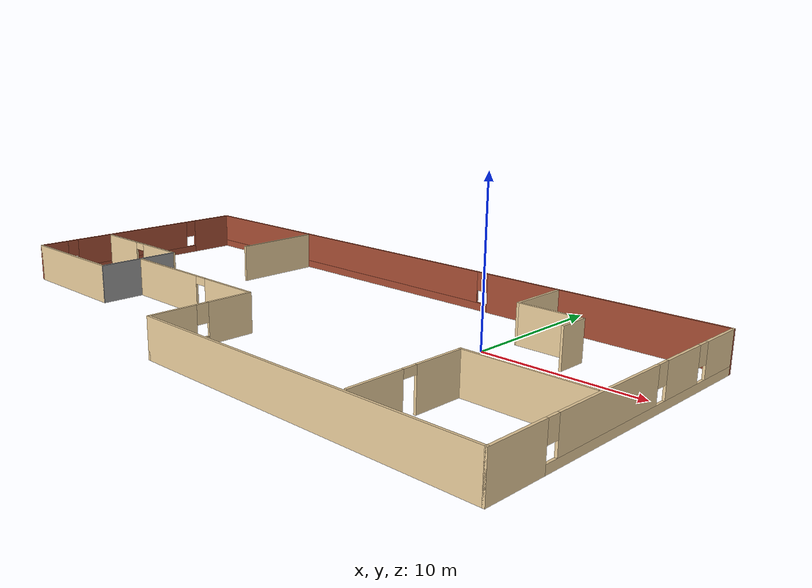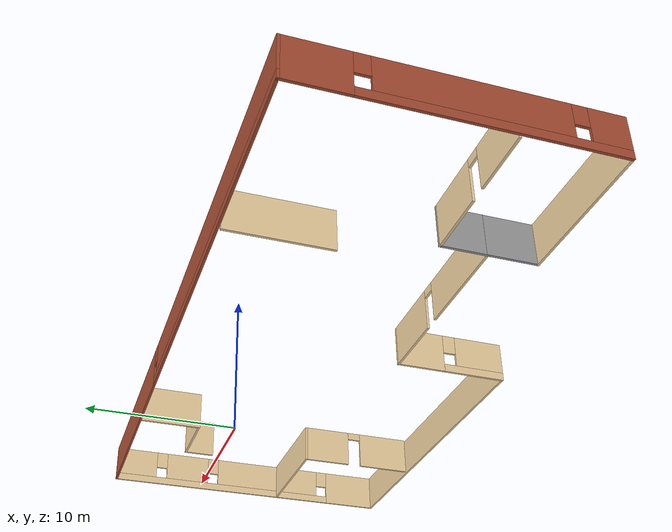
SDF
<?xml version='1.0'?>
<sdf version='1.6'>
  <model name='building'>
    <pose frame=''>-10.1439 -3.88836 0 0 -0 0</pose>
    <link name='Wall_0'>
      <pose frame=''>-21.15 2 0 0 0 -1.5708</pose>
      <visual name='Wall_0_Visual_0'>
        <pose frame=''>-6.58308 0 1.25 0 -0 0</pose>
        <geometry>
          <box>
            <size>3.33383 0.15 2.5</size>
          </box>
        </geometry>
        <material>
          <script>
            <uri>file://media/materials/scripts/gazebo.material</uri>
            <name>Gazebo/Bricks</name>
          </script>
          <ambient>1 1 1 1</ambient>
        </material>
        <meta>
          <layer>0</layer>
        </meta>
      </visual>
      <collision name='Wall_0_Collision_0'>
        <geometry>
          <box>
            <size>3.33383 0.15 2.5</size>
          </box>
        </geometry>
        <pose frame=''>-6.58308 0 1.25 0 -0 0</pose>
      </collision>
      <visual name='Wall_0_Visual_1'>
        <pose frame=''>1.66691 0 0.25 0 -0 0</pose>
        <geometry>
          <box>
            <size>13.1662 0.15 0.5</size>
          </box>
        </geometry>
        <material>
          <script>
            <uri>file://media/materials/scripts/gazebo.material</uri>
            <name>Gazebo/Bricks</name>
          </script>
          <ambient>1 1 1 1</ambient>
        </material>
        <meta>
          <layer>0</layer>
        </meta>
      </visual>
      <collision name='Wall_0_Collision_1'>
        <geometry>
          <box>
            <size>13.1662 0.15 0.5</size>
          </box>
        </geometry>
        <pose frame=''>1.66691 0 0.25 0 -0 0</pose>
      </collision>
      <visual name='Wall_0_Visual_2'>
        <pose frame=''>0.649236 0 1.5 0 -0 0</pose>
        <geometry>
          <box>
            <size>9.53081 0.15 2</size>
          </box>
        </geometry>
        <material>
          <script>
            <uri>file://media/materials/scripts/gazebo.material</uri>
            <name>Gazebo/Bricks</name>
          </script>
          <ambient>1 1 1 1</ambient>
        </material>
        <meta>
          <layer>0</layer>
        </meta>
      </visual>
      <collision name='Wall_0_Collision_2'>
        <geometry>
          <box>
            <size>9.53081 0.15 2</size>
          </box>
        </geometry>
        <pose frame=''>0.649236 0 1.5 0 -0 0</pose>
      </collision>
      <visual name='Wall_0_Visual_3'>
        <pose frame=''>7.23232 0 1.5 0 -0 0</pose>
        <geometry>
          <box>
            <size>2.03536 0.15 2</size>
          </box>
        </geometry>
        <material>
          <script>
            <uri>file://media/materials/scripts/gazebo.material</uri>
            <name>Gazebo/Bricks</name>
          </script>
          <ambient>1 1 1 1</ambient>
        </material>
        <meta>
          <layer>0</layer>
        </meta>
      </visual>
      <collision name='Wall_0_Collision_3'>
        <geometry>
          <box>
            <size>2.03536 0.15 2</size>
          </box>
        </geometry>
        <pose frame=''>7.23232 0 1.5 0 -0 0</pose>
      </collision>
      <visual name='Wall_0_Visual_4'>
        <pose frame=''>-4.51617 0 1.9 0 -0 0</pose>
        <geometry>
          <box>
            <size>0.8 0.15 1.2</size>
          </box>
        </geometry>
        <material>
          <script>
            <uri>file://media/materials/scripts/gazebo.material</uri>
            <name>Gazebo/Bricks</name>
          </script>
          <ambient>1 1 1 1</ambient>
        </material>
        <meta>
          <layer>0</layer>
        </meta>
      </visual>
      <collision name='Wall_0_Collision_4'>
        <geometry>
          <box>
            <size>0.8 0.15 1.2</size>
          </box>
        </geometry>
        <pose frame=''>-4.51617 0 1.9 0 -0 0</pose>
      </collision>
      <visual name='Wall_0_Visual_5'>
        <pose frame=''>5.81464 0 1.9 0 -0 0</pose>
        <geometry>
          <box>
            <size>0.8 0.15 1.2</size>
          </box>
        </geometry>
        <material>
          <script>
            <uri>file://media/materials/scripts/gazebo.material</uri>
            <name>Gazebo/Bricks</name>
          </script>
          <ambient>1 1 1 1</ambient>
        </material>
        <meta>
          <layer>0</layer>
        </meta>
      </visual>
      <collision name='Wall_0_Collision_5'>
        <geometry>
          <box>
            <size>0.8 0.15 1.2</size>
          </box>
        </geometry>
        <pose frame=''>5.81464 0 1.9 0 -0 0</pose>
      </collision>
    </link>
    <link name='Wall_1'>
      <collision name='Wall_1_Collision'>
        <geometry>
          <box>
            <size>8.5 0.15 2.5</size>
          </box>
        </geometry>
        <pose frame=''>0 0 1.25 0 -0 0</pose>
      </collision>
      <visual name='Wall_1_Visual'>
        <pose frame=''>0 0 1.25 0 -0 0</pose>
        <geometry>
          <box>
            <size>8.5 0.15 2.5</size>
          </box>
        </geometry>
        <material>
          <script>
            <uri>file://media/materials/scripts/gazebo.material</uri>
            <name>Gazebo/Grey</name>
          </script>
          <ambient>0.921569 0.807843 0.615686 1</ambient>
        </material>
        <meta>
          <layer>0</layer>
        </meta>
      </visual>
      <pose frame=''>-16.975 -6.175 0 0 -0 0</pose>
    </link>
    <link name='Wall_10'>
      <collision name='Wall_10_Collision'>
        <geometry>
          <box>
            <size>4.25 0.15 2.5</size>
          </box>
        </geometry>
        <pose frame=''>0 0 1.25 0 -0 0</pose>
      </collision>
      <visual name='Wall_10_Visual'>
        <pose frame=''>0 0 1.25 0 -0 0</pose>
        <geometry>
          <box>
            <size>4.25 0.15 2.5</size>
          </box>
        </geometry>
        <material>
          <script>
            <uri>file://media/materials/scripts/gazebo.material</uri>
            <name>Gazebo/Grey</name>
          </script>
          <ambient>0.921569 0.807843 0.615686 1</ambient>
        </material>
        <meta>
          <layer>0</layer>
        </meta>
      </visual>
      <pose frame=''>12.861 6.21739 0 0 -0 0</pose>
    </link>
    <link name='Wall_11'>
      <collision name='Wall_11_Collision'>
        <geometry>
          <box>
            <size>2 0.15 2.5</size>
          </box>
        </geometry>
        <pose frame=''>0 0 1.25 0 -0 0</pose>
      </collision>
      <visual name='Wall_11_Visual'>
        <pose frame=''>0 0 1.25 0 -0 0</pose>
        <geometry>
          <box>
            <size>2 0.15 2.5</size>
          </box>
        </geometry>
        <material>
          <script>
            <uri>file://media/materials/scripts/gazebo.material</uri>
            <name>Gazebo/Grey</name>
          </script>
          <ambient>0.921569 0.807843 0.615686 1</ambient>
        </material>
        <meta>
          <layer>0</layer>
        </meta>
      </visual>
      <pose frame=''>14.911 5.29239 0 0 0 -1.5708</pose>
    </link>
    <link name='Wall_13'>
      <collision name='Wall_13_Collision'>
        <geometry>
          <box>
            <size>7.5 0.15 2.5</size>
          </box>
        </geometry>
        <pose frame=''>0 0 1.25 0 -0 0</pose>
      </collision>
      <visual name='Wall_13_Visual'>
        <pose frame=''>0 0 1.25 0 -0 0</pose>
        <geometry>
          <box>
            <size>7.5 0.15 2.5</size>
          </box>
        </geometry>
        <material>
          <script>
            <uri>file://media/materials/scripts/gazebo.material</uri>
            <name>Gazebo/Grey</name>
          </script>
          <ambient>0.921569 0.807843 0.615686 1</ambient>
        </material>
        <meta>
          <layer>0</layer>
        </meta>
      </visual>
      <pose frame=''>17.2515 -2.30807 0 0 -0 3.14159</pose>
    </link>
    <link name='Wall_14'>
      <pose frame=''>13.5765 -6.10807 0 0 0 -1.5708</pose>
      <visual name='Wall_14_Visual_0'>
        <pose frame=''>-2.23308 0 1.25 0 -0 0</pose>
        <geometry>
          <box>
            <size>3.28383 0.15 2.5</size>
          </box>
        </geometry>
        <material>
          <script>
            <uri>file://media/materials/scripts/gazebo.material</uri>
            <name>Gazebo/Grey</name>
          </script>
          <ambient>0.921569 0.807843 0.615686 1</ambient>
        </material>
        <meta>
          <layer>0</layer>
        </meta>
      </visual>
      <collision name='Wall_14_Collision_0'>
        <geometry>
          <box>
            <size>3.28383 0.15 2.5</size>
          </box>
        </geometry>
        <pose frame=''>-2.23308 0 1.25 0 -0 0</pose>
      </collision>
      <visual name='Wall_14_Visual_1'>
        <pose frame=''>2.09192 0 1.25 0 -0 0</pose>
        <geometry>
          <box>
            <size>3.56617 0.15 2.5</size>
          </box>
        </geometry>
        <material>
          <script>
            <uri>file://media/materials/scripts/gazebo.material</uri>
            <name>Gazebo/Grey</name>
          </script>
          <ambient>0.921569 0.807843 0.615686 1</ambient>
        </material>
        <meta>
          <layer>0</layer>
        </meta>
      </visual>
      <collision name='Wall_14_Collision_1'>
        <geometry>
          <box>
            <size>3.56617 0.15 2.5</size>
          </box>
        </geometry>
        <pose frame=''>2.09192 0 1.25 0 -0 0</pose>
      </collision>
      <visual name='Wall_14_Visual_2'>
        <pose frame=''>-0.141171 0 2.25 0 -0 0</pose>
        <geometry>
          <box>
            <size>0.9 0.15 0.5</size>
          </box>
        </geometry>
        <material>
          <script>
            <uri>file://media/materials/scripts/gazebo.material</uri>
            <name>Gazebo/Grey</name>
          </script>
          <ambient>0.921569 0.807843 0.615686 1</ambient>
        </material>
        <meta>
          <layer>0</layer>
        </meta>
      </visual>
      <collision name='Wall_14_Collision_2'>
        <geometry>
          <box>
            <size>0.9 0.15 0.5</size>
          </box>
        </geometry>
        <pose frame=''>-0.141171 0 2.25 0 -0 0</pose>
      </collision>
    </link>
    <link name='Wall_18'>
      <collision name='Wall_18_Collision'>
        <geometry>
          <box>
            <size>2.75 0.15 2.5</size>
          </box>
        </geometry>
        <pose frame=''>0 0 1.25 0 -0 0</pose>
      </collision>
      <visual name='Wall_18_Visual'>
        <pose frame=''>0 0 1.25 0 -0 0</pose>
        <geometry>
          <box>
            <size>2.75 0.15 2.5</size>
          </box>
        </geometry>
        <material>
          <script>
            <uri>file://media/materials/scripts/gazebo.material</uri>
            <name>Gazebo/Grey</name>
          </script>
          <ambient>1 1 1 1</ambient>
        </material>
        <meta>
          <layer>0</layer>
        </meta>
      </visual>
      <pose frame=''>-12.8 -2.025 0 0 -0 1.5708</pose>
    </link>
    <link name='Wall_19'>
      <pose frame=''>-16.85 -0.725 0 0 -0 3.14159</pose>
      <visual name='Wall_19_Visual_0'>
        <pose frame=''>-2.23595 0 1.25 0 -0 0</pose>
        <geometry>
          <box>
            <size>3.77811 0.15 2.5</size>
          </box>
        </geometry>
        <material>
          <script>
            <uri>file://media/materials/scripts/gazebo.material</uri>
            <name>Gazebo/Grey</name>
          </script>
          <ambient>0.921569 0.807843 0.615686 1</ambient>
        </material>
        <meta>
          <layer>0</layer>
        </meta>
      </visual>
      <collision name='Wall_19_Collision_0'>
        <geometry>
          <box>
            <size>3.77811 0.15 2.5</size>
          </box>
        </geometry>
        <pose frame=''>-2.23595 0 1.25 0 -0 0</pose>
      </collision>
      <visual name='Wall_19_Visual_1'>
        <pose frame=''>2.33905 0 1.25 0 -0 0</pose>
        <geometry>
          <box>
            <size>3.57189 0.15 2.5</size>
          </box>
        </geometry>
        <material>
          <script>
            <uri>file://media/materials/scripts/gazebo.material</uri>
            <name>Gazebo/Grey</name>
          </script>
          <ambient>0.921569 0.807843 0.615686 1</ambient>
        </material>
        <meta>
          <layer>0</layer>
        </meta>
      </visual>
      <collision name='Wall_19_Collision_1'>
        <geometry>
          <box>
            <size>3.57189 0.15 2.5</size>
          </box>
        </geometry>
        <pose frame=''>2.33905 0 1.25 0 -0 0</pose>
      </collision>
      <visual name='Wall_19_Visual_2'>
        <pose frame=''>0.103107 0 2.25 0 -0 0</pose>
        <geometry>
          <box>
            <size>0.9 0.15 0.5</size>
          </box>
        </geometry>
        <material>
          <script>
            <uri>file://media/materials/scripts/gazebo.material</uri>
            <name>Gazebo/Grey</name>
          </script>
          <ambient>0.921569 0.807843 0.615686 1</ambient>
        </material>
        <meta>
          <layer>0</layer>
        </meta>
      </visual>
      <collision name='Wall_19_Collision_2'>
        <geometry>
          <box>
            <size>0.9 0.15 0.5</size>
          </box>
        </geometry>
        <pose frame=''>0.103107 0 2.25 0 -0 0</pose>
      </collision>
    </link>
    <link name='Wall_2'>
      <collision name='Wall_2_Collision'>
        <geometry>
          <box>
            <size>3 0.15 2.5</size>
          </box>
        </geometry>
        <pose frame=''>0 0 1.25 0 -0 0</pose>
      </collision>
      <visual name='Wall_2_Visual'>
        <pose frame=''>0 0 1.25 0 -0 0</pose>
        <geometry>
          <box>
            <size>3 0.15 2.5</size>
          </box>
        </geometry>
        <material>
          <script>
            <uri>file://media/materials/scripts/gazebo.material</uri>
            <name>Gazebo/Grey</name>
          </script>
          <ambient>1 1 1 1</ambient>
        </material>
        <meta>
          <layer>0</layer>
        </meta>
      </visual>
      <pose frame=''>-12.8 -4.75 0 0 -0 1.5708</pose>
    </link>
    <link name='Wall_21'>
      <collision name='Wall_21_Collision'>
        <geometry>
          <box>
            <size>6 0.15 2.5</size>
          </box>
        </geometry>
        <pose frame=''>0 0 1.25 0 -0 0</pose>
      </collision>
      <visual name='Wall_21_Visual'>
        <pose frame=''>0 0 1.25 0 -0 0</pose>
        <geometry>
          <box>
            <size>6 0.15 2.5</size>
          </box>
        </geometry>
        <material>
          <script>
            <uri>file://media/materials/scripts/gazebo.material</uri>
            <name>Gazebo/Grey</name>
          </script>
          <ambient>0.921569 0.807843 0.615686 1</ambient>
        </material>
        <meta>
          <layer>0</layer>
        </meta>
      </visual>
      <pose frame=''>-10.9268 7.03477 0 0 0 -1.5708</pose>
    </link>
    <link name='Wall_3'>
      <pose frame=''>-7 -3.325 0 0 -0 0</pose>
      <visual name='Wall_3_Visual_0'>
        <pose frame=''>-2.65081 0 1.25 0 -0 0</pose>
        <geometry>
          <box>
            <size>6.44838 0.15 2.5</size>
          </box>
        </geometry>
        <material>
          <script>
            <uri>file://media/materials/scripts/gazebo.material</uri>
            <name>Gazebo/Grey</name>
          </script>
          <ambient>0.921569 0.807843 0.615686 1</ambient>
        </material>
        <meta>
          <layer>0</layer>
        </meta>
      </visual>
      <collision name='Wall_3_Collision_0'>
        <geometry>
          <box>
            <size>6.44838 0.15 2.5</size>
          </box>
        </geometry>
        <pose frame=''>-2.65081 0 1.25 0 -0 0</pose>
      </collision>
      <visual name='Wall_3_Visual_1'>
        <pose frame=''>3.67419 0 1.25 0 -0 0</pose>
        <geometry>
          <box>
            <size>4.40162 0.15 2.5</size>
          </box>
        </geometry>
        <material>
          <script>
            <uri>file://media/materials/scripts/gazebo.material</uri>
            <name>Gazebo/Grey</name>
          </script>
          <ambient>0.921569 0.807843 0.615686 1</ambient>
        </material>
        <meta>
          <layer>0</layer>
        </meta>
      </visual>
      <collision name='Wall_3_Collision_1'>
        <geometry>
          <box>
            <size>4.40162 0.15 2.5</size>
          </box>
        </geometry>
        <pose frame=''>3.67419 0 1.25 0 -0 0</pose>
      </collision>
      <visual name='Wall_3_Visual_2'>
        <pose frame=''>1.02338 0 2.25 0 -0 0</pose>
        <geometry>
          <box>
            <size>0.9 0.15 0.5</size>
          </box>
        </geometry>
        <material>
          <script>
            <uri>file://media/materials/scripts/gazebo.material</uri>
            <name>Gazebo/Grey</name>
          </script>
          <ambient>0.921569 0.807843 0.615686 1</ambient>
        </material>
        <meta>
          <layer>0</layer>
        </meta>
      </visual>
      <collision name='Wall_3_Collision_2'>
        <geometry>
          <box>
            <size>0.9 0.15 0.5</size>
          </box>
        </geometry>
        <pose frame=''>1.02338 0 2.25 0 -0 0</pose>
      </collision>
    </link>
    <link name='Wall_4'>
      <pose frame=''>-1.2 -6.75 0 0 0 -1.5708</pose>
      <visual name='Wall_4_Visual_0'>
        <pose frame=''>-1.96491 0 1.25 0 -0 0</pose>
        <geometry>
          <box>
            <size>3.07018 0.15 2.5</size>
          </box>
        </geometry>
        <material>
          <script>
            <uri>file://media/materials/scripts/gazebo.material</uri>
            <name>Gazebo/Grey</name>
          </script>
          <ambient>0.921569 0.807843 0.615686 1</ambient>
        </material>
        <meta>
          <layer>0</layer>
        </meta>
      </visual>
      <collision name='Wall_4_Collision_0'>
        <geometry>
          <box>
            <size>3.07018 0.15 2.5</size>
          </box>
        </geometry>
        <pose frame=''>-1.96491 0 1.25 0 -0 0</pose>
      </collision>
      <visual name='Wall_4_Visual_1'>
        <pose frame=''>1.53509 0 0.25 0 -0 0</pose>
        <geometry>
          <box>
            <size>3.92982 0.15 0.5</size>
          </box>
        </geometry>
        <material>
          <script>
            <uri>file://media/materials/scripts/gazebo.material</uri>
            <name>Gazebo/Grey</name>
          </script>
          <ambient>0.921569 0.807843 0.615686 1</ambient>
        </material>
        <meta>
          <layer>0</layer>
        </meta>
      </visual>
      <collision name='Wall_4_Collision_1'>
        <geometry>
          <box>
            <size>3.92982 0.15 0.5</size>
          </box>
        </geometry>
        <pose frame=''>1.53509 0 0.25 0 -0 0</pose>
      </collision>
      <visual name='Wall_4_Visual_2'>
        <pose frame=''>1.93509 0 1.5 0 -0 0</pose>
        <geometry>
          <box>
            <size>3.12981 0.15 2</size>
          </box>
        </geometry>
        <material>
          <script>
            <uri>file://media/materials/scripts/gazebo.material</uri>
            <name>Gazebo/Grey</name>
          </script>
          <ambient>0.921569 0.807843 0.615686 1</ambient>
        </material>
        <meta>
          <layer>0</layer>
        </meta>
      </visual>
      <collision name='Wall_4_Collision_2'>
        <geometry>
          <box>
            <size>3.12981 0.15 2</size>
          </box>
        </geometry>
        <pose frame=''>1.93509 0 1.5 0 -0 0</pose>
      </collision>
      <visual name='Wall_4_Visual_3'>
        <pose frame=''>-0.029815 0 1.9 0 -0 0</pose>
        <geometry>
          <box>
            <size>0.8 0.15 1.2</size>
          </box>
        </geometry>
        <material>
          <script>
            <uri>file://media/materials/scripts/gazebo.material</uri>
            <name>Gazebo/Grey</name>
          </script>
          <ambient>0.921569 0.807843 0.615686 1</ambient>
        </material>
        <meta>
          <layer>0</layer>
        </meta>
      </visual>
      <collision name='Wall_4_Collision_3'>
        <geometry>
          <box>
            <size>0.8 0.15 1.2</size>
          </box>
        </geometry>
        <pose frame=''>-0.029815 0 1.9 0 -0 0</pose>
      </collision>
    </link>
    <link name='Wall_5'>
      <collision name='Wall_5_Collision'>
        <geometry>
          <box>
            <size>22.5 0.15 2.5</size>
          </box>
        </geometry>
        <pose frame=''>0 0 1.25 0 -0 0</pose>
      </collision>
      <visual name='Wall_5_Visual'>
        <pose frame=''>0 0 1.25 0 -0 0</pose>
        <geometry>
          <box>
            <size>22.5 0.15 2.5</size>
          </box>
        </geometry>
        <material>
          <script>
            <uri>file://media/materials/scripts/gazebo.material</uri>
            <name>Gazebo/Grey</name>
          </script>
          <ambient>0.921569 0.807843 0.615686 1</ambient>
        </material>
        <meta>
          <layer>0</layer>
        </meta>
      </visual>
      <pose frame=''>9.975 -10.175 0 0 -0 0</pose>
    </link>
    <link name='Wall_6'>
      <pose frame=''>21.15 0 0 0 -0 1.5708</pose>
      <visual name='Wall_6_Visual_0'>
        <pose frame=''>-8.30845 0 1.25 0 -0 0</pose>
        <geometry>
          <box>
            <size>3.8831 0.15 2.5</size>
          </box>
        </geometry>
        <material>
          <script>
            <uri>file://media/materials/scripts/gazebo.material</uri>
            <name>Gazebo/Grey</name>
          </script>
          <ambient>0.921569 0.807843 0.615686 1</ambient>
        </material>
        <meta>
          <layer>0</layer>
        </meta>
      </visual>
      <collision name='Wall_6_Collision_0'>
        <geometry>
          <box>
            <size>3.8831 0.15 2.5</size>
          </box>
        </geometry>
        <pose frame=''>-8.30845 0 1.25 0 -0 0</pose>
      </collision>
      <visual name='Wall_6_Visual_1'>
        <pose frame=''>1.94155 0 0.25 0 -0 0</pose>
        <geometry>
          <box>
            <size>16.6169 0.15 0.5</size>
          </box>
        </geometry>
        <material>
          <script>
            <uri>file://media/materials/scripts/gazebo.material</uri>
            <name>Gazebo/Grey</name>
          </script>
          <ambient>0.921569 0.807843 0.615686 1</ambient>
        </material>
        <meta>
          <layer>0</layer>
        </meta>
      </visual>
      <collision name='Wall_6_Collision_1'>
        <geometry>
          <box>
            <size>16.6169 0.15 0.5</size>
          </box>
        </geometry>
        <pose frame=''>1.94155 0 0.25 0 -0 0</pose>
      </collision>
      <visual name='Wall_6_Visual_2'>
        <pose frame=''>-1.55478 0 1.5 0 -0 0</pose>
        <geometry>
          <box>
            <size>8.02424 0.15 2</size>
          </box>
        </geometry>
        <material>
          <script>
            <uri>file://media/materials/scripts/gazebo.material</uri>
            <name>Gazebo/Grey</name>
          </script>
          <ambient>0.921569 0.807843 0.615686 1</ambient>
        </material>
        <meta>
          <layer>0</layer>
        </meta>
      </visual>
      <collision name='Wall_6_Collision_2'>
        <geometry>
          <box>
            <size>8.02424 0.15 2</size>
          </box>
        </geometry>
        <pose frame=''>-1.55478 0 1.5 0 -0 0</pose>
      </collision>
      <visual name='Wall_6_Visual_3'>
        <pose frame=''>4.84817 0 1.5 0 -0 0</pose>
        <geometry>
          <box>
            <size>3.18167 0.15 2</size>
          </box>
        </geometry>
        <material>
          <script>
            <uri>file://media/materials/scripts/gazebo.material</uri>
            <name>Gazebo/Grey</name>
          </script>
          <ambient>0.921569 0.807843 0.615686 1</ambient>
        </material>
        <meta>
          <layer>0</layer>
        </meta>
      </visual>
      <collision name='Wall_6_Collision_3'>
        <geometry>
          <box>
            <size>3.18167 0.15 2</size>
          </box>
        </geometry>
        <pose frame=''>4.84817 0 1.5 0 -0 0</pose>
      </collision>
      <visual name='Wall_6_Visual_4'>
        <pose frame=''>8.7445 0 1.5 0 -0 0</pose>
        <geometry>
          <box>
            <size>3.01099 0.15 2</size>
          </box>
        </geometry>
        <material>
          <script>
            <uri>file://media/materials/scripts/gazebo.material</uri>
            <name>Gazebo/Grey</name>
          </script>
          <ambient>0.921569 0.807843 0.615686 1</ambient>
        </material>
        <meta>
          <layer>0</layer>
        </meta>
      </visual>
      <collision name='Wall_6_Collision_4'>
        <geometry>
          <box>
            <size>3.01099 0.15 2</size>
          </box>
        </geometry>
        <pose frame=''>8.7445 0 1.5 0 -0 0</pose>
      </collision>
      <visual name='Wall_6_Visual_5'>
        <pose frame=''>-5.9669 0 1.9 0 -0 0</pose>
        <geometry>
          <box>
            <size>0.8 0.15 1.2</size>
          </box>
        </geometry>
        <material>
          <script>
            <uri>file://media/materials/scripts/gazebo.material</uri>
            <name>Gazebo/Grey</name>
          </script>
          <ambient>0.921569 0.807843 0.615686 1</ambient>
        </material>
        <meta>
          <layer>0</layer>
        </meta>
      </visual>
      <collision name='Wall_6_Collision_5'>
        <geometry>
          <box>
            <size>0.8 0.15 1.2</size>
          </box>
        </geometry>
        <pose frame=''>-5.9669 0 1.9 0 -0 0</pose>
      </collision>
      <visual name='Wall_6_Visual_6'>
        <pose frame=''>2.85734 0 1.9 0 -0 0</pose>
        <geometry>
          <box>
            <size>0.8 0.15 1.2</size>
          </box>
        </geometry>
        <material>
          <script>
            <uri>file://media/materials/scripts/gazebo.material</uri>
            <name>Gazebo/Grey</name>
          </script>
          <ambient>0.921569 0.807843 0.615686 1</ambient>
        </material>
        <meta>
          <layer>0</layer>
        </meta>
      </visual>
      <collision name='Wall_6_Collision_6'>
        <geometry>
          <box>
            <size>0.8 0.15 1.2</size>
          </box>
        </geometry>
        <pose frame=''>2.85734 0 1.9 0 -0 0</pose>
      </collision>
      <visual name='Wall_6_Visual_7'>
        <pose frame=''>6.83901 0 1.9 0 -0 0</pose>
        <geometry>
          <box>
            <size>0.8 0.15 1.2</size>
          </box>
        </geometry>
        <material>
          <script>
            <uri>file://media/materials/scripts/gazebo.material</uri>
            <name>Gazebo/Grey</name>
          </script>
          <ambient>0.921569 0.807843 0.615686 1</ambient>
        </material>
        <meta>
          <layer>0</layer>
        </meta>
      </visual>
      <collision name='Wall_6_Collision_7'>
        <geometry>
          <box>
            <size>0.8 0.15 1.2</size>
          </box>
        </geometry>
        <pose frame=''>6.83901 0 1.9 0 -0 0</pose>
      </collision>
    </link>
    <link name='Wall_7'>
      <pose frame=''>0 10.175 0 0 -0 3.14159</pose>
      <visual name='Wall_7_Visual_0'>
        <pose frame=''>-13.4739 0 1.25 0 -0 0</pose>
        <geometry>
          <box>
            <size>15.5023 0.15 2.5</size>
          </box>
        </geometry>
        <material>
          <script>
            <uri>file://media/materials/scripts/gazebo.material</uri>
            <name>Gazebo/Bricks</name>
          </script>
          <ambient>1 1 1 1</ambient>
        </material>
        <meta>
          <layer>0</layer>
        </meta>
      </visual>
      <collision name='Wall_7_Collision_0'>
        <geometry>
          <box>
            <size>15.5023 0.15 2.5</size>
          </box>
        </geometry>
        <pose frame=''>-13.4739 0 1.25 0 -0 0</pose>
      </collision>
      <visual name='Wall_7_Visual_1'>
        <pose frame=''>7.75115 0 0.25 0 -0 0</pose>
        <geometry>
          <box>
            <size>26.9477 0.15 0.5</size>
          </box>
        </geometry>
        <material>
          <script>
            <uri>file://media/materials/scripts/gazebo.material</uri>
            <name>Gazebo/Bricks</name>
          </script>
          <ambient>1 1 1 1</ambient>
        </material>
        <meta>
          <layer>0</layer>
        </meta>
      </visual>
      <collision name='Wall_7_Collision_1'>
        <geometry>
          <box>
            <size>26.9477 0.15 0.5</size>
          </box>
        </geometry>
        <pose frame=''>7.75115 0 0.25 0 -0 0</pose>
      </collision>
      <visual name='Wall_7_Visual_2'>
        <pose frame=''>8.15114 0 1.5 0 -0 0</pose>
        <geometry>
          <box>
            <size>26.1477 0.15 2</size>
          </box>
        </geometry>
        <material>
          <script>
            <uri>file://media/materials/scripts/gazebo.material</uri>
            <name>Gazebo/Bricks</name>
          </script>
          <ambient>1 1 1 1</ambient>
        </material>
        <meta>
          <layer>0</layer>
        </meta>
      </visual>
      <collision name='Wall_7_Collision_2'>
        <geometry>
          <box>
            <size>26.1477 0.15 2</size>
          </box>
        </geometry>
        <pose frame=''>8.15114 0 1.5 0 -0 0</pose>
      </collision>
      <visual name='Wall_7_Visual_3'>
        <pose frame=''>-5.32271 0 1.9 0 -0 0</pose>
        <geometry>
          <box>
            <size>0.8 0.15 1.2</size>
          </box>
        </geometry>
        <material>
          <script>
            <uri>file://media/materials/scripts/gazebo.material</uri>
            <name>Gazebo/Bricks</name>
          </script>
          <ambient>1 1 1 1</ambient>
        </material>
        <meta>
          <layer>0</layer>
        </meta>
      </visual>
      <collision name='Wall_7_Collision_3'>
        <geometry>
          <box>
            <size>0.8 0.15 1.2</size>
          </box>
        </geometry>
        <pose frame=''>-5.32271 0 1.9 0 -0 0</pose>
      </collision>
    </link>
    <link name='Wall_9'>
      <collision name='Wall_9_Collision'>
        <geometry>
          <box>
            <size>4 0.15 2.5</size>
          </box>
        </geometry>
        <pose frame=''>0 0 1.25 0 -0 0</pose>
      </collision>
      <visual name='Wall_9_Visual'>
        <pose frame=''>0 0 1.25 0 -0 0</pose>
        <geometry>
          <box>
            <size>4 0.15 2.5</size>
          </box>
        </geometry>
        <material>
          <script>
            <uri>file://media/materials/scripts/gazebo.material</uri>
            <name>Gazebo/Grey</name>
          </script>
          <ambient>0.921569 0.807843 0.615686 1</ambient>
        </material>
        <meta>
          <layer>0</layer>
        </meta>
      </visual>
      <pose frame=''>10.811 8.14239 0 0 0 -1.5708</pose>
    </link>
    <static>1</static>
  </model>
</sdf>
